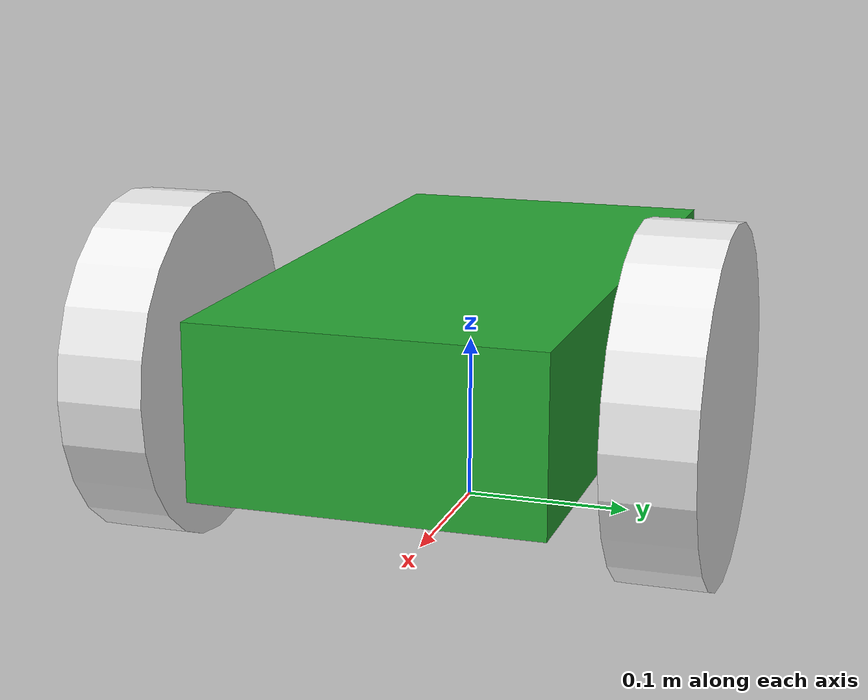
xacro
<?xml version='1.0'?>

<robot name="sevenbot" xmlns:xacro="http://www.ros.org/wiki/xacro">

  <xacro:include filename="$(find sevenbot_description)/urdf/sevenbot.gazebo" />
  <xacro:include filename="$(find sevenbot_description)/urdf/materials.xacro" />

  <link name='dummy_link'>
      <origin xyz="0.0 0 0.1" rpy=" 0 0 0"/>
  </link>

  <joint type="fixed" name="dummy_joint">
    <origin xyz="0 0 0.1" rpy="0 0 0"/>
    <child link="base_link"/>
    <parent link="dummy_link"/>
    <axis xyz="0 1 0" rpy="0 0 0"/>
  </joint>

  <link name='base_link'>
    <pose>0 0 0.1 0 0 0</pose>

    <inertial>
      <mass value="15.0"/>
      <origin xyz="0.0 0 0.1" rpy=" 0 0 0"/>
      <inertia
          ixx="0.1" ixy="0" ixz="0"
          iyy="0.1" iyz="0"
          izz="0.1"
      />
    </inertial>

    <collision name='collision'>
      <geometry>
        <box size=".4 .2 .1"/>
      </geometry>
    </collision>

    <visual name='base_visual'>
      <origin xyz="0 0 0" rpy=" 0 0 0"/>
      <geometry>
        <box size=".4 .2 .1"/>
      </geometry>
    </visual>

    <collision name='caster_collision'>
      <origin xyz="-0.15 0 -0.05" rpy=" 0 0 0"/>
      <geometry>
        <sphere radius="0.05"/>
      </geometry>
      <surface>
        <friction>
          <ode>
            <mu>0</mu>
            <mu2>0</mu2>
            <slip1>1.0</slip1>
            <slip2>1.0</slip2>
          </ode>
        </friction>
      </surface>
    </collision>

    <visual name='caster_visual'>
      <origin xyz="-0.15 0 -0.05" rpy=" 0 0 0"/>
      <geometry>
        <sphere radius="0.05"/>
      </geometry>
    </visual>
  </link>

  <link name="left_wheel_link">
    <collision name="collision">
      <origin xyz="0 0 0" rpy="0 1.5707 1.5707"/>
      <geometry>
        <cylinder radius="0.1" length="0.05"/>
      </geometry>
    </collision>

    <visual name="left_wheel_visual">
      <origin xyz="0 0 0" rpy="0 1.5707 1.5707"/>
      <geometry>
        <cylinder radius="0.1" length="0.05"/>
      </geometry>
    </visual>
    <inertial>
      <origin xyz="0 0 0" rpy="0 1.5707 1.5707"/>
      <mass value="5"/>
      <inertia
        ixx=".1" ixy="0.0" ixz="0.0"
        iyy=".1" iyz="0.0"
        izz=".1"/>
    </inertial>
  </link>

  <link name="right_wheel_link">
    <collision name="collision">
      <origin xyz="0 0 0" rpy="0 1.5707 1.5707"/>
      <geometry>
        <cylinder radius="0.1" length="0.05"/>
      </geometry>
    </collision>

    <visual name="right_wheel_visual">
      <origin xyz="0 0 0" rpy="0 1.5707 1.5707"/>
      <geometry>
        <cylinder radius="0.1" length="0.05"/>
      </geometry>
    </visual>
    <inertial>
      <origin xyz="0 0 0" rpy="0 1.5707 1.5707"/>
      <mass value="5"/>
      <inertia
        ixx=".1" ixy="0.0" ixz="0.0"
        iyy=".1" iyz="0.0"
        izz=".1"/>
    </inertial>
  </link>

  <joint type="continuous" name="left_wheel_hinge">
    <origin xyz="0.1 0.15 0" rpy="0 0 0"/>
    <child link="left_wheel_link"/>
    <parent link="base_link"/>
    <axis xyz="0 1 0" rpy="0 0 0"/>
    <limit effort="100" velocity="10"/>
    <joint_properties damping="2.0" friction="1.5"/>
  </joint>

  <joint type="continuous" name="right_wheel_hinge">
    <origin xyz="0.1 -0.15 0" rpy="0 0 0"/>
    <child link="right_wheel_link"/>
    <parent link="base_link"/>
    <axis xyz="0 1 0" rpy="0 0 0"/>
    <limit effort="100" velocity="10"/>
    <joint_properties damping="1.0" friction="1.5"/>
  </joint>

</robot>
